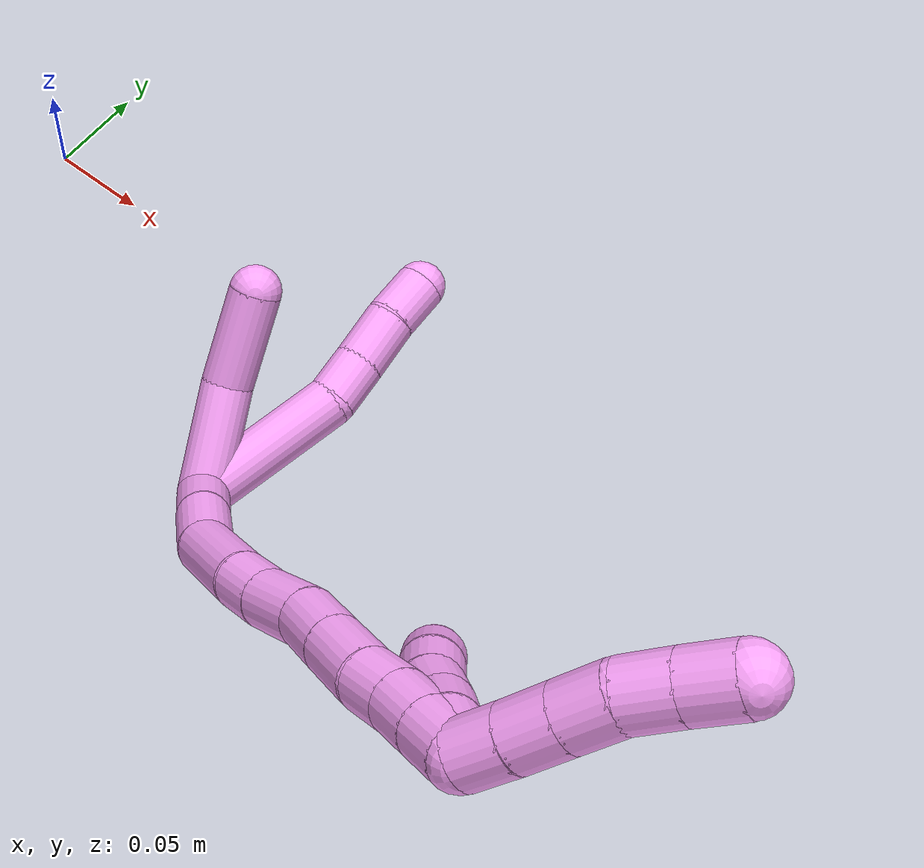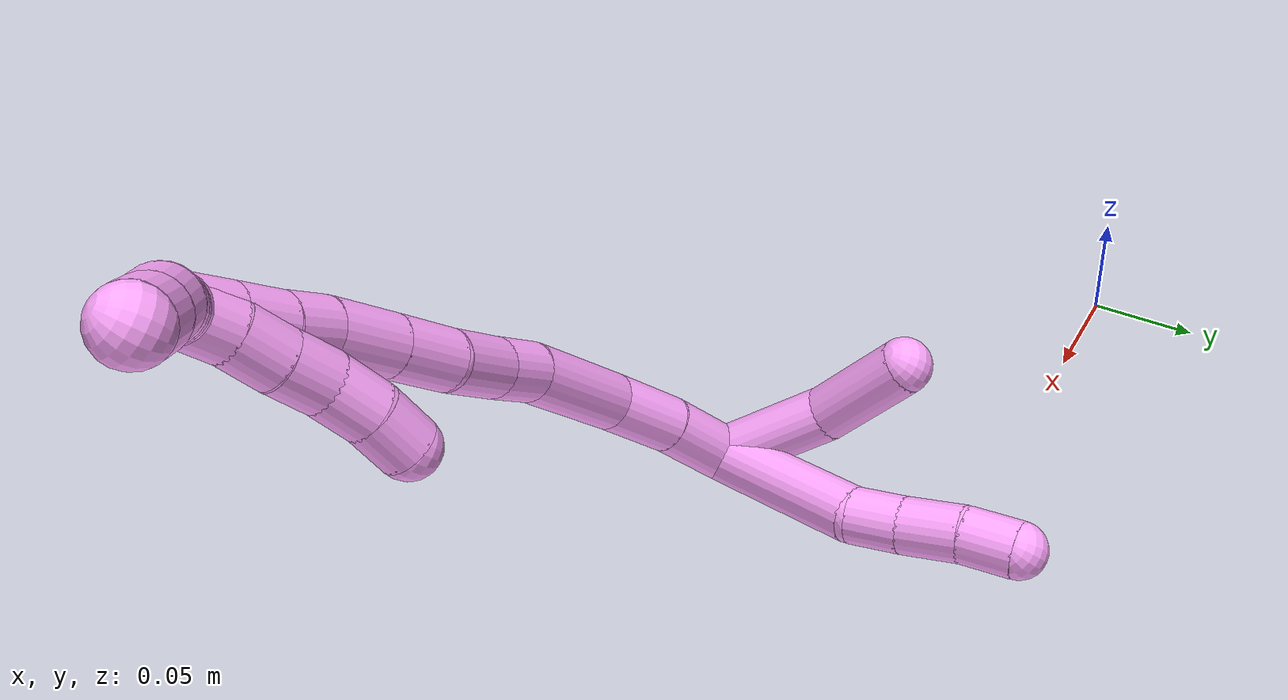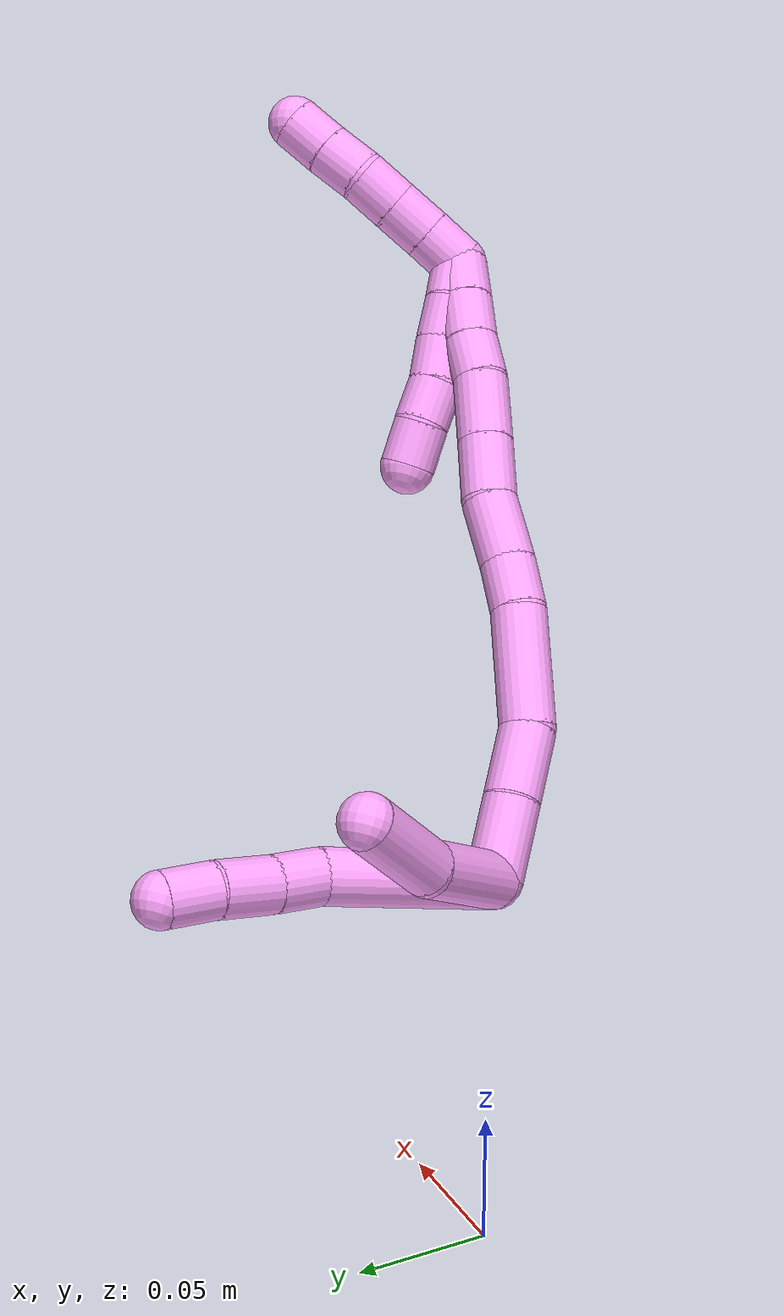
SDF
<sdf version="1.7">
 <world name="default">
  <model name="4">
   <static>0</static>
   <link name="4">
    <collision name="collision-cylinder-e_1_2_8">
     <pose>0.001059 0.0363 -0.010441 -1.85087 0.028027 -0.037223</pose>
     <geometry><cylinder><radius>0.0125</radius><length>0.075574</length></cylinder></geometry>
     <surface>
      <friction><ode><mu>1.16</mu><mu2>1.16</mu2><slip1>0</slip1><slip2>0</slip2></ode></friction>
      <contact><ode><kp>1e+06</kp><kd>1</kd><max_vel>0</max_vel><min_depth>0.001</min_depth></ode></contact>
     </surface>
    </collision>
    <visual name="visual-cylinder-e_1_2_8">
     <pose>0.001059 0.0363 -0.010441 -1.85087 0.028027 -0.037223</pose>
     <geometry><cylinder><radius>0.0125</radius><length>0.075574</length></cylinder></geometry>
     <material><ambient>1 0.65098 0.996078 1</ambient></material>
    </visual>
    <collision name="collision-cylinder-e_2_8_9">
     <pose>-0.000346 0.082585 -0.026253 -2.06431 -0.214006 0.355692</pose>
     <geometry><cylinder><radius>0.0125</radius><length>0.023203</length></cylinder></geometry>
     <surface>
      <friction><ode><mu>1.16</mu><mu2>1.16</mu2><slip1>0</slip1><slip2>0</slip2></ode></friction>
      <contact><ode><kp>1e+06</kp><kd>1</kd><max_vel>0</max_vel><min_depth>0.001</min_depth></ode></contact>
     </surface>
    </collision>
    <visual name="visual-cylinder-e_2_8_9">
     <pose>-0.000346 0.082585 -0.026253 -2.06431 -0.214006 0.355692</pose>
     <geometry><cylinder><radius>0.0125</radius><length>0.023203</length></cylinder></geometry>
     <material><ambient>1 0.65098 0.996078 1</ambient></material>
    </visual>
    <collision name="collision-cylinder-e_3_9_10">
     <pose>-0.00619 0.104503 -0.037143 -2.00401 -0.251599 0.390621</pose>
     <geometry><cylinder><radius>0.0125</radius><length>0.027152</length></cylinder></geometry>
     <surface>
      <friction><ode><mu>1.16</mu><mu2>1.16</mu2><slip1>0</slip1><slip2>0</slip2></ode></friction>
      <contact><ode><kp>1e+06</kp><kd>1</kd><max_vel>0</max_vel><min_depth>0.001</min_depth></ode></contact>
     </surface>
    </collision>
    <visual name="visual-cylinder-e_3_9_10">
     <pose>-0.00619 0.104503 -0.037143 -2.00401 -0.251599 0.390621</pose>
     <geometry><cylinder><radius>0.0125</radius><length>0.027152</length></cylinder></geometry>
     <material><ambient>1 0.65098 0.996078 1</ambient></material>
    </visual>
    <collision name="collision-cylinder-e_4_10_6">
     <pose>-0.011153 0.12691 -0.048377 -2.07023 -0.131935 0.221682</pose>
     <geometry><cylinder><radius>0.0125</radius><length>0.024071</length></cylinder></geometry>
     <surface>
      <friction><ode><mu>1.16</mu><mu2>1.16</mu2><slip1>0</slip1><slip2>0</slip2></ode></friction>
      <contact><ode><kp>1e+06</kp><kd>1</kd><max_vel>0</max_vel><min_depth>0.001</min_depth></ode></contact>
     </surface>
    </collision>
    <visual name="visual-cylinder-e_4_10_6">
     <pose>-0.011153 0.12691 -0.048377 -2.07023 -0.131935 0.221682</pose>
     <geometry><cylinder><radius>0.0125</radius><length>0.024071</length></cylinder></geometry>
     <material><ambient>1 0.65098 0.996078 1</ambient></material>
    </visual>
    <collision name="collision-cylinder-e_1_2_11">
     <pose>-0.01737 0.018982 -0.006185 -1.88578 -0.716014 0.951768</pose>
     <geometry><cylinder><radius>0.0125</radius><length>0.052927</length></cylinder></geometry>
     <surface>
      <friction><ode><mu>1.16</mu><mu2>1.16</mu2><slip1>0</slip1><slip2>0</slip2></ode></friction>
      <contact><ode><kp>1e+06</kp><kd>1</kd><max_vel>0</max_vel><min_depth>0.001</min_depth></ode></contact>
     </surface>
    </collision>
    <visual name="visual-cylinder-e_1_2_11">
     <pose>-0.01737 0.018982 -0.006185 -1.88578 -0.716014 0.951768</pose>
     <geometry><cylinder><radius>0.0125</radius><length>0.052927</length></cylinder></geometry>
     <material><ambient>1 0.65098 0.996078 1</ambient></material>
    </visual>
    <collision name="collision-cylinder-e_2_11_5">
     <pose>-0.049589 0.056172 -0.01096 -1.4935 -0.682664 0.635305</pose>
     <geometry><cylinder><radius>0.0125</radius><length>0.047073</length></cylinder></geometry>
     <surface>
      <friction><ode><mu>1.16</mu><mu2>1.16</mu2><slip1>0</slip1><slip2>0</slip2></ode></friction>
      <contact><ode><kp>1e+06</kp><kd>1</kd><max_vel>0</max_vel><min_depth>0.001</min_depth></ode></contact>
     </surface>
    </collision>
    <visual name="visual-cylinder-e_2_11_5">
     <pose>-0.049589 0.056172 -0.01096 -1.4935 -0.682664 0.635305</pose>
     <geometry><cylinder><radius>0.0125</radius><length>0.047073</length></cylinder></geometry>
     <material><ambient>1 0.65098 0.996078 1</ambient></material>
    </visual>
    <collision name="collision-cylinder-e_1_2_12">
     <pose>-4.6e-05 0.000497 0.017892 -0.02776 -0.002585 3.6e-05</pose>
     <geometry><cylinder><radius>0.0125</radius><length>0.035798</length></cylinder></geometry>
     <surface>
      <friction><ode><mu>1.16</mu><mu2>1.16</mu2><slip1>0</slip1><slip2>0</slip2></ode></friction>
      <contact><ode><kp>1e+06</kp><kd>1</kd><max_vel>0</max_vel><min_depth>0.001</min_depth></ode></contact>
     </surface>
    </collision>
    <visual name="visual-cylinder-e_1_2_12">
     <pose>-4.6e-05 0.000497 0.017892 -0.02776 -0.002585 3.6e-05</pose>
     <geometry><cylinder><radius>0.0125</radius><length>0.035798</length></cylinder></geometry>
     <material><ambient>1 0.65098 0.996078 1</ambient></material>
    </visual>
    <collision name="collision-cylinder-e_2_12_13">
     <pose>0.001356 0.001051 0.052293 -0.003452 0.087549 -0.000151</pose>
     <geometry><cylinder><radius>0.0125</radius><length>0.033144</length></cylinder></geometry>
     <surface>
      <friction><ode><mu>1.16</mu><mu2>1.16</mu2><slip1>0</slip1><slip2>0</slip2></ode></friction>
      <contact><ode><kp>1e+06</kp><kd>1</kd><max_vel>0</max_vel><min_depth>0.001</min_depth></ode></contact>
     </surface>
    </collision>
    <visual name="visual-cylinder-e_2_12_13">
     <pose>0.001356 0.001051 0.052293 -0.003452 0.087549 -0.000151</pose>
     <geometry><cylinder><radius>0.0125</radius><length>0.033144</length></cylinder></geometry>
     <material><ambient>1 0.65098 0.996078 1</ambient></material>
    </visual>
    <collision name="collision-cylinder-e_3_13_14">
     <pose>0.005584 0.008836 0.094533 -0.291757 0.103055 -0.015154</pose>
     <geometry><cylinder><radius>0.0125</radius><length>0.054021</length></cylinder></geometry>
     <surface>
      <friction><ode><mu>1.16</mu><mu2>1.16</mu2><slip1>0</slip1><slip2>0</slip2></ode></friction>
      <contact><ode><kp>1e+06</kp><kd>1</kd><max_vel>0</max_vel><min_depth>0.001</min_depth></ode></contact>
     </surface>
    </collision>
    <visual name="visual-cylinder-e_3_13_14">
     <pose>0.005584 0.008836 0.094533 -0.291757 0.103055 -0.015154</pose>
     <geometry><cylinder><radius>0.0125</radius><length>0.054021</length></cylinder></geometry>
     <material><ambient>1 0.65098 0.996078 1</ambient></material>
    </visual>
    <collision name="collision-cylinder-e_4_14_15">
     <pose>0.011165 0.020839 0.130761 -0.386792 0.242413 -0.0477</pose>
     <geometry><cylinder><radius>0.0125</radius><length>0.023351</length></cylinder></geometry>
     <surface>
      <friction><ode><mu>1.16</mu><mu2>1.16</mu2><slip1>0</slip1><slip2>0</slip2></ode></friction>
      <contact><ode><kp>1e+06</kp><kd>1</kd><max_vel>0</max_vel><min_depth>0.001</min_depth></ode></contact>
     </surface>
    </collision>
    <visual name="visual-cylinder-e_4_14_15">
     <pose>0.011165 0.020839 0.130761 -0.386792 0.242413 -0.0477</pose>
     <geometry><cylinder><radius>0.0125</radius><length>0.023351</length></cylinder></geometry>
     <material><ambient>1 0.65098 0.996078 1</ambient></material>
    </visual>
    <collision name="collision-cylinder-e_5_15_16">
     <pose>0.016945 0.032006 0.154788 -0.471123 0.19358 -0.0466</pose>
     <geometry><cylinder><radius>0.0125</radius><length>0.030946</length></cylinder></geometry>
     <surface>
      <friction><ode><mu>1.16</mu><mu2>1.16</mu2><slip1>0</slip1><slip2>0</slip2></ode></friction>
      <contact><ode><kp>1e+06</kp><kd>1</kd><max_vel>0</max_vel><min_depth>0.001</min_depth></ode></contact>
     </surface>
    </collision>
    <visual name="visual-cylinder-e_5_15_16">
     <pose>0.016945 0.032006 0.154788 -0.471123 0.19358 -0.0466</pose>
     <geometry><cylinder><radius>0.0125</radius><length>0.030946</length></cylinder></geometry>
     <material><ambient>1 0.65098 0.996078 1</ambient></material>
    </visual>
    <collision name="collision-cylinder-e_6_16_17">
     <pose>0.022395 0.042559 0.181974 -0.261914 0.173215 -0.02287</pose>
     <geometry><cylinder><radius>0.0125</radius><length>0.028706</length></cylinder></geometry>
     <surface>
      <friction><ode><mu>1.16</mu><mu2>1.16</mu2><slip1>0</slip1><slip2>0</slip2></ode></friction>
      <contact><ode><kp>1e+06</kp><kd>1</kd><max_vel>0</max_vel><min_depth>0.001</min_depth></ode></contact>
     </surface>
    </collision>
    <visual name="visual-cylinder-e_6_16_17">
     <pose>0.022395 0.042559 0.181974 -0.261914 0.173215 -0.02287</pose>
     <geometry><cylinder><radius>0.0125</radius><length>0.028706</length></cylinder></geometry>
     <material><ambient>1 0.65098 0.996078 1</ambient></material>
    </visual>
    <collision name="collision-cylinder-e_7_17_18">
     <pose>0.027642 0.050346 0.210468 -0.271222 0.178175 -0.024375</pose>
     <geometry><cylinder><radius>0.0125</radius><length>0.031299</length></cylinder></geometry>
     <surface>
      <friction><ode><mu>1.16</mu><mu2>1.16</mu2><slip1>0</slip1><slip2>0</slip2></ode></friction>
      <contact><ode><kp>1e+06</kp><kd>1</kd><max_vel>0</max_vel><min_depth>0.001</min_depth></ode></contact>
     </surface>
    </collision>
    <visual name="visual-cylinder-e_7_17_18">
     <pose>0.027642 0.050346 0.210468 -0.271222 0.178175 -0.024375</pose>
     <geometry><cylinder><radius>0.0125</radius><length>0.031299</length></cylinder></geometry>
     <material><ambient>1 0.65098 0.996078 1</ambient></material>
    </visual>
    <collision name="collision-cylinder-e_8_18_19">
     <pose>0.033142 0.058404 0.234555 -0.402019 0.264906 -0.054282</pose>
     <geometry><cylinder><radius>0.0125</radius><length>0.020827</length></cylinder></geometry>
     <surface>
      <friction><ode><mu>1.16</mu><mu2>1.16</mu2><slip1>0</slip1><slip2>0</slip2></ode></friction>
      <contact><ode><kp>1e+06</kp><kd>1</kd><max_vel>0</max_vel><min_depth>0.001</min_depth></ode></contact>
     </surface>
    </collision>
    <visual name="visual-cylinder-e_8_18_19">
     <pose>0.033142 0.058404 0.234555 -0.402019 0.264906 -0.054282</pose>
     <geometry><cylinder><radius>0.0125</radius><length>0.020827</length></cylinder></geometry>
     <material><ambient>1 0.65098 0.996078 1</ambient></material>
    </visual>
    <collision name="collision-cylinder-e_9_19_20">
     <pose>0.038259 0.065513 0.253826 -0.306916 0.223615 -0.034729</pose>
     <geometry><cylinder><radius>0.0125</radius><length>0.021562</length></cylinder></geometry>
     <surface>
      <friction><ode><mu>1.16</mu><mu2>1.16</mu2><slip1>0</slip1><slip2>0</slip2></ode></friction>
      <contact><ode><kp>1e+06</kp><kd>1</kd><max_vel>0</max_vel><min_depth>0.001</min_depth></ode></contact>
     </surface>
    </collision>
    <visual name="visual-cylinder-e_9_19_20">
     <pose>0.038259 0.065513 0.253826 -0.306916 0.223615 -0.034729</pose>
     <geometry><cylinder><radius>0.0125</radius><length>0.021562</length></cylinder></geometry>
     <material><ambient>1 0.65098 0.996078 1</ambient></material>
    </visual>
    <collision name="collision-cylinder-e_10_20_1">
     <pose>0.042968 0.071741 0.273271 -0.313187 0.229814 -0.036441</pose>
     <geometry><cylinder><radius>0.0125</radius><length>0.020347</length></cylinder></geometry>
     <surface>
      <friction><ode><mu>1.16</mu><mu2>1.16</mu2><slip1>0</slip1><slip2>0</slip2></ode></friction>
      <contact><ode><kp>1e+06</kp><kd>1</kd><max_vel>0</max_vel><min_depth>0.001</min_depth></ode></contact>
     </surface>
    </collision>
    <visual name="visual-cylinder-e_10_20_1">
     <pose>0.042968 0.071741 0.273271 -0.313187 0.229814 -0.036441</pose>
     <geometry><cylinder><radius>0.0125</radius><length>0.020347</length></cylinder></geometry>
     <material><ambient>1 0.65098 0.996078 1</ambient></material>
    </visual>
    <collision name="collision-cylinder-e_1_1_21">
     <pose>0.045406 0.083865 0.2869 -1.1368 0.012046 -0.007694</pose>
     <geometry><cylinder><radius>0.0125</radius><length>0.02</length></cylinder></geometry>
     <surface>
      <friction><ode><mu>1.16</mu><mu2>1.16</mu2><slip1>0</slip1><slip2>0</slip2></ode></friction>
      <contact><ode><kp>1e+06</kp><kd>1</kd><max_vel>0</max_vel><min_depth>0.001</min_depth></ode></contact>
     </surface>
    </collision>
    <visual name="visual-cylinder-e_1_1_21">
     <pose>0.045406 0.083865 0.2869 -1.1368 0.012046 -0.007694</pose>
     <geometry><cylinder><radius>0.0125</radius><length>0.02</length></cylinder></geometry>
     <material><ambient>1 0.65098 0.996078 1</ambient></material>
    </visual>
    <collision name="collision-cylinder-e_2_21_22">
     <pose>0.045466 0.102137 0.295025 -1.16798 -0.005966 0.003943</pose>
     <geometry><cylinder><radius>0.0125</radius><length>0.02</length></cylinder></geometry>
     <surface>
      <friction><ode><mu>1.16</mu><mu2>1.16</mu2><slip1>0</slip1><slip2>0</slip2></ode></friction>
      <contact><ode><kp>1e+06</kp><kd>1</kd><max_vel>0</max_vel><min_depth>0.001</min_depth></ode></contact>
     </surface>
    </collision>
    <visual name="visual-cylinder-e_2_21_22">
     <pose>0.045466 0.102137 0.295025 -1.16798 -0.005966 0.003943</pose>
     <geometry><cylinder><radius>0.0125</radius><length>0.02</length></cylinder></geometry>
     <material><ambient>1 0.65098 0.996078 1</ambient></material>
    </visual>
    <collision name="collision-cylinder-e_3_22_23">
     <pose>0.045346 0.120508 0.30293 -1.16087 -0.00608 0.003987</pose>
     <geometry><cylinder><radius>0.0125</radius><length>0.02</length></cylinder></geometry>
     <surface>
      <friction><ode><mu>1.16</mu><mu2>1.16</mu2><slip1>0</slip1><slip2>0</slip2></ode></friction>
      <contact><ode><kp>1e+06</kp><kd>1</kd><max_vel>0</max_vel><min_depth>0.001</min_depth></ode></contact>
     </surface>
    </collision>
    <visual name="visual-cylinder-e_3_22_23">
     <pose>0.045346 0.120508 0.30293 -1.16087 -0.00608 0.003987</pose>
     <geometry><cylinder><radius>0.0125</radius><length>0.02</length></cylinder></geometry>
     <material><ambient>1 0.65098 0.996078 1</ambient></material>
    </visual>
    <collision name="collision-cylinder-e_4_23_24">
     <pose>0.04734 0.138542 0.311065 -1.13291 0.206955 -0.1319</pose>
     <geometry><cylinder><radius>0.0125</radius><length>0.02</length></cylinder></geometry>
     <surface>
      <friction><ode><mu>1.16</mu><mu2>1.16</mu2><slip1>0</slip1><slip2>0</slip2></ode></friction>
      <contact><ode><kp>1e+06</kp><kd>1</kd><max_vel>0</max_vel><min_depth>0.001</min_depth></ode></contact>
     </surface>
    </collision>
    <visual name="visual-cylinder-e_4_23_24">
     <pose>0.04734 0.138542 0.311065 -1.13291 0.206955 -0.1319</pose>
     <geometry><cylinder><radius>0.0125</radius><length>0.02</length></cylinder></geometry>
     <material><ambient>1 0.65098 0.996078 1</ambient></material>
    </visual>
    <collision name="collision-cylinder-e_5_24_4">
     <pose>0.051453 0.156072 0.319761 -1.08771 0.207284 -0.125627</pose>
     <geometry><cylinder><radius>0.0125</radius><length>0.02</length></cylinder></geometry>
     <surface>
      <friction><ode><mu>1.16</mu><mu2>1.16</mu2><slip1>0</slip1><slip2>0</slip2></ode></friction>
      <contact><ode><kp>1e+06</kp><kd>1</kd><max_vel>0</max_vel><min_depth>0.001</min_depth></ode></contact>
     </surface>
    </collision>
    <visual name="visual-cylinder-e_5_24_4">
     <pose>0.051453 0.156072 0.319761 -1.08771 0.207284 -0.125627</pose>
     <geometry><cylinder><radius>0.0125</radius><length>0.02</length></cylinder></geometry>
     <material><ambient>1 0.65098 0.996078 1</ambient></material>
    </visual>
    <collision name="collision-cylinder-e_1_1_25">
     <pose>0.044823 0.074186 0.272724 3.08084 -0.046208 -1.30037</pose>
     <geometry><cylinder><radius>0.0125</radius><length>0.02</length></cylinder></geometry>
     <surface>
      <friction><ode><mu>1.16</mu><mu2>1.16</mu2><slip1>0</slip1><slip2>0</slip2></ode></friction>
      <contact><ode><kp>1e+06</kp><kd>1</kd><max_vel>0</max_vel><min_depth>0.001</min_depth></ode></contact>
     </surface>
    </collision>
    <visual name="visual-cylinder-e_1_1_25">
     <pose>0.044823 0.074186 0.272724 3.08084 -0.046208 -1.30037</pose>
     <geometry><cylinder><radius>0.0125</radius><length>0.02</length></cylinder></geometry>
     <material><ambient>1 0.65098 0.996078 1</ambient></material>
    </visual>
    <collision name="collision-cylinder-e_2_25_26">
     <pose>0.045258 0.072996 0.252811 3.08292 0.089757 1.98405</pose>
     <geometry><cylinder><radius>0.0125</radius><length>0.02</length></cylinder></geometry>
     <surface>
      <friction><ode><mu>1.16</mu><mu2>1.16</mu2><slip1>0</slip1><slip2>0</slip2></ode></friction>
      <contact><ode><kp>1e+06</kp><kd>1</kd><max_vel>0</max_vel><min_depth>0.001</min_depth></ode></contact>
     </surface>
    </collision>
    <visual name="visual-cylinder-e_2_25_26">
     <pose>0.045258 0.072996 0.252811 3.08292 0.089757 1.98405</pose>
     <geometry><cylinder><radius>0.0125</radius><length>0.02</length></cylinder></geometry>
     <material><ambient>1 0.65098 0.996078 1</ambient></material>
    </visual>
    <collision name="collision-cylinder-e_3_26_27">
     <pose>0.046374 0.071454 0.232917 3.04562 0.022002 0.45041</pose>
     <geometry><cylinder><radius>0.0125</radius><length>0.02</length></cylinder></geometry>
     <surface>
      <friction><ode><mu>1.16</mu><mu2>1.16</mu2><slip1>0</slip1><slip2>0</slip2></ode></friction>
      <contact><ode><kp>1e+06</kp><kd>1</kd><max_vel>0</max_vel><min_depth>0.001</min_depth></ode></contact>
     </surface>
    </collision>
    <visual name="visual-cylinder-e_3_26_27">
     <pose>0.046374 0.071454 0.232917 3.04562 0.022002 0.45041</pose>
     <geometry><cylinder><radius>0.0125</radius><length>0.02</length></cylinder></geometry>
     <material><ambient>1 0.65098 0.996078 1</ambient></material>
    </visual>
    <collision name="collision-cylinder-e_4_27_28">
     <pose>0.047863 0.071049 0.213061 -3.08579 0.127247 -2.31585</pose>
     <geometry><cylinder><radius>0.0125</radius><length>0.02</length></cylinder></geometry>
     <surface>
      <friction><ode><mu>1.16</mu><mu2>1.16</mu2><slip1>0</slip1><slip2>0</slip2></ode></friction>
      <contact><ode><kp>1e+06</kp><kd>1</kd><max_vel>0</max_vel><min_depth>0.001</min_depth></ode></contact>
     </surface>
    </collision>
    <visual name="visual-cylinder-e_4_27_28">
     <pose>0.047863 0.071049 0.213061 -3.08579 0.127247 -2.31585</pose>
     <geometry><cylinder><radius>0.0125</radius><length>0.02</length></cylinder></geometry>
     <material><ambient>1 0.65098 0.996078 1</ambient></material>
    </visual>
    <collision name="collision-cylinder-e_5_28_3">
     <pose>0.051797 0.071512 0.19352 3.13229 0.269774 3.07305</pose>
     <geometry><cylinder><radius>0.0125</radius><length>0.02</length></cylinder></geometry>
     <surface>
      <friction><ode><mu>1.16</mu><mu2>1.16</mu2><slip1>0</slip1><slip2>0</slip2></ode></friction>
      <contact><ode><kp>1e+06</kp><kd>1</kd><max_vel>0</max_vel><min_depth>0.001</min_depth></ode></contact>
     </surface>
    </collision>
    <visual name="visual-cylinder-e_5_28_3">
     <pose>0.051797 0.071512 0.19352 3.13229 0.269774 3.07305</pose>
     <geometry><cylinder><radius>0.0125</radius><length>0.02</length></cylinder></geometry>
     <material><ambient>1 0.65098 0.996078 1</ambient></material>
    </visual>
    <collision name="collision-sphere-3">
     <pose>0.054462 0.071423 0.183882 0 -0 0</pose>
     <geometry><sphere><radius>0.0125</radius></sphere></geometry>
     <surface>
      <friction><ode><mu>1.16</mu><mu2>1.16</mu2><slip1>0</slip1><slip2>0</slip2></ode></friction>
      <contact><ode><kp>1e+06</kp><kd>1</kd><max_vel>0</max_vel><min_depth>0.001</min_depth></ode></contact>
     </surface>
    </collision>
    <visual name="visual-sphere-3">
     <pose>0.054462 0.071423 0.183882 0 -0 0</pose>
     <geometry><sphere><radius>0.0125</radius></sphere></geometry>
     <material><ambient>1 0.65098 0.996078 1</ambient></material>
    </visual>
    <collision name="collision-sphere-28">
     <pose>0.049132 0.071602 0.203158 0 -0 0</pose>
     <geometry><sphere><radius>0.0125</radius></sphere></geometry>
     <surface>
      <friction><ode><mu>1.16</mu><mu2>1.16</mu2><slip1>0</slip1><slip2>0</slip2></ode></friction>
      <contact><ode><kp>1e+06</kp><kd>1</kd><max_vel>0</max_vel><min_depth>0.001</min_depth></ode></contact>
     </surface>
    </collision>
    <visual name="visual-sphere-28">
     <pose>0.049132 0.071602 0.203158 0 -0 0</pose>
     <geometry><sphere><radius>0.0125</radius></sphere></geometry>
     <material><ambient>1 0.65098 0.996078 1</ambient></material>
    </visual>
    <collision name="collision-sphere-27">
     <pose>0.046594 0.070496 0.222965 0 -0 0</pose>
     <geometry><sphere><radius>0.0125</radius></sphere></geometry>
     <surface>
      <friction><ode><mu>1.16</mu><mu2>1.16</mu2><slip1>0</slip1><slip2>0</slip2></ode></friction>
      <contact><ode><kp>1e+06</kp><kd>1</kd><max_vel>0</max_vel><min_depth>0.001</min_depth></ode></contact>
     </surface>
    </collision>
    <visual name="visual-sphere-27">
     <pose>0.046594 0.070496 0.222965 0 -0 0</pose>
     <geometry><sphere><radius>0.0125</radius></sphere></geometry>
     <material><ambient>1 0.65098 0.996078 1</ambient></material>
    </visual>
    <collision name="collision-sphere-26">
     <pose>0.046154 0.072412 0.242868 0 -0 0</pose>
     <geometry><sphere><radius>0.0125</radius></sphere></geometry>
     <surface>
      <friction><ode><mu>1.16</mu><mu2>1.16</mu2><slip1>0</slip1><slip2>0</slip2></ode></friction>
      <contact><ode><kp>1e+06</kp><kd>1</kd><max_vel>0</max_vel><min_depth>0.001</min_depth></ode></contact>
     </surface>
    </collision>
    <visual name="visual-sphere-26">
     <pose>0.046154 0.072412 0.242868 0 -0 0</pose>
     <geometry><sphere><radius>0.0125</radius></sphere></geometry>
     <material><ambient>1 0.65098 0.996078 1</ambient></material>
    </visual>
    <collision name="collision-sphere-25">
     <pose>0.044361 0.07358 0.262754 0 -0 0</pose>
     <geometry><sphere><radius>0.0125</radius></sphere></geometry>
     <surface>
      <friction><ode><mu>1.16</mu><mu2>1.16</mu2><slip1>0</slip1><slip2>0</slip2></ode></friction>
      <contact><ode><kp>1e+06</kp><kd>1</kd><max_vel>0</max_vel><min_depth>0.001</min_depth></ode></contact>
     </surface>
    </collision>
    <visual name="visual-sphere-25">
     <pose>0.044361 0.07358 0.262754 0 -0 0</pose>
     <geometry><sphere><radius>0.0125</radius></sphere></geometry>
     <material><ambient>1 0.65098 0.996078 1</ambient></material>
    </visual>
    <collision name="collision-sphere-4">
     <pose>0.053511 0.164738 0.324306 0 -0 0</pose>
     <geometry><sphere><radius>0.0125</radius></sphere></geometry>
     <surface>
      <friction><ode><mu>1.16</mu><mu2>1.16</mu2><slip1>0</slip1><slip2>0</slip2></ode></friction>
      <contact><ode><kp>1e+06</kp><kd>1</kd><max_vel>0</max_vel><min_depth>0.001</min_depth></ode></contact>
     </surface>
    </collision>
    <visual name="visual-sphere-4">
     <pose>0.053511 0.164738 0.324306 0 -0 0</pose>
     <geometry><sphere><radius>0.0125</radius></sphere></geometry>
     <material><ambient>1 0.65098 0.996078 1</ambient></material>
    </visual>
    <collision name="collision-sphere-24">
     <pose>0.049395 0.147405 0.315215 0 -0 0</pose>
     <geometry><sphere><radius>0.0125</radius></sphere></geometry>
     <surface>
      <friction><ode><mu>1.16</mu><mu2>1.16</mu2><slip1>0</slip1><slip2>0</slip2></ode></friction>
      <contact><ode><kp>1e+06</kp><kd>1</kd><max_vel>0</max_vel><min_depth>0.001</min_depth></ode></contact>
     </surface>
    </collision>
    <visual name="visual-sphere-24">
     <pose>0.049395 0.147405 0.315215 0 -0 0</pose>
     <geometry><sphere><radius>0.0125</radius></sphere></geometry>
     <material><ambient>1 0.65098 0.996078 1</ambient></material>
    </visual>
    <collision name="collision-sphere-23">
     <pose>0.045285 0.129679 0.306915 0 -0 0</pose>
     <geometry><sphere><radius>0.0125</radius></sphere></geometry>
     <surface>
      <friction><ode><mu>1.16</mu><mu2>1.16</mu2><slip1>0</slip1><slip2>0</slip2></ode></friction>
      <contact><ode><kp>1e+06</kp><kd>1</kd><max_vel>0</max_vel><min_depth>0.001</min_depth></ode></contact>
     </surface>
    </collision>
    <visual name="visual-sphere-23">
     <pose>0.045285 0.129679 0.306915 0 -0 0</pose>
     <geometry><sphere><radius>0.0125</radius></sphere></geometry>
     <material><ambient>1 0.65098 0.996078 1</ambient></material>
    </visual>
    <collision name="collision-sphere-22">
     <pose>0.045407 0.111336 0.298945 0 -0 0</pose>
     <geometry><sphere><radius>0.0125</radius></sphere></geometry>
     <surface>
      <friction><ode><mu>1.16</mu><mu2>1.16</mu2><slip1>0</slip1><slip2>0</slip2></ode></friction>
      <contact><ode><kp>1e+06</kp><kd>1</kd><max_vel>0</max_vel><min_depth>0.001</min_depth></ode></contact>
     </surface>
    </collision>
    <visual name="visual-sphere-22">
     <pose>0.045407 0.111336 0.298945 0 -0 0</pose>
     <geometry><sphere><radius>0.0125</radius></sphere></geometry>
     <material><ambient>1 0.65098 0.996078 1</ambient></material>
    </visual>
    <collision name="collision-sphere-21">
     <pose>0.045526 0.092937 0.291105 0 -0 0</pose>
     <geometry><sphere><radius>0.0125</radius></sphere></geometry>
     <surface>
      <friction><ode><mu>1.16</mu><mu2>1.16</mu2><slip1>0</slip1><slip2>0</slip2></ode></friction>
      <contact><ode><kp>1e+06</kp><kd>1</kd><max_vel>0</max_vel><min_depth>0.001</min_depth></ode></contact>
     </surface>
    </collision>
    <visual name="visual-sphere-21">
     <pose>0.045526 0.092937 0.291105 0 -0 0</pose>
     <geometry><sphere><radius>0.0125</radius></sphere></geometry>
     <material><ambient>1 0.65098 0.996078 1</ambient></material>
    </visual>
    <collision name="collision-sphere-1">
     <pose>0.045285 0.074793 0.282695 0 -0 0</pose>
     <geometry><sphere><radius>0.0125</radius></sphere></geometry>
     <surface>
      <friction><ode><mu>1.16</mu><mu2>1.16</mu2><slip1>0</slip1><slip2>0</slip2></ode></friction>
      <contact><ode><kp>1e+06</kp><kd>1</kd><max_vel>0</max_vel><min_depth>0.001</min_depth></ode></contact>
     </surface>
    </collision>
    <visual name="visual-sphere-1">
     <pose>0.045285 0.074793 0.282695 0 -0 0</pose>
     <geometry><sphere><radius>0.0125</radius></sphere></geometry>
     <material><ambient>1 0.65098 0.996078 1</ambient></material>
    </visual>
    <collision name="collision-sphere-11">
     <pose>-0.03474 0.037965 -0.01237 0 -0 0</pose>
     <geometry><sphere><radius>0.0125</radius></sphere></geometry>
     <surface>
      <friction><ode><mu>1.16</mu><mu2>1.16</mu2><slip1>0</slip1><slip2>0</slip2></ode></friction>
      <contact><ode><kp>1e+06</kp><kd>1</kd><max_vel>0</max_vel><min_depth>0.001</min_depth></ode></contact>
     </surface>
    </collision>
    <visual name="visual-sphere-11">
     <pose>-0.03474 0.037965 -0.01237 0 -0 0</pose>
     <geometry><sphere><radius>0.0125</radius></sphere></geometry>
     <material><ambient>1 0.65098 0.996078 1</ambient></material>
    </visual>
    <collision name="collision-sphere-6">
     <pose>-0.012736 0.137384 -0.054091 0 -0 0</pose>
     <geometry><sphere><radius>0.0125</radius></sphere></geometry>
     <surface>
      <friction><ode><mu>1.16</mu><mu2>1.16</mu2><slip1>0</slip1><slip2>0</slip2></ode></friction>
      <contact><ode><kp>1e+06</kp><kd>1</kd><max_vel>0</max_vel><min_depth>0.001</min_depth></ode></contact>
     </surface>
    </collision>
    <visual name="visual-sphere-6">
     <pose>-0.012736 0.137384 -0.054091 0 -0 0</pose>
     <geometry><sphere><radius>0.0125</radius></sphere></geometry>
     <material><ambient>1 0.65098 0.996078 1</ambient></material>
    </visual>
    <collision name="collision-sphere-10">
     <pose>-0.009569 0.116437 -0.042663 0 -0 0</pose>
     <geometry><sphere><radius>0.0125</radius></sphere></geometry>
     <surface>
      <friction><ode><mu>1.16</mu><mu2>1.16</mu2><slip1>0</slip1><slip2>0</slip2></ode></friction>
      <contact><ode><kp>1e+06</kp><kd>1</kd><max_vel>0</max_vel><min_depth>0.001</min_depth></ode></contact>
     </surface>
    </collision>
    <visual name="visual-sphere-10">
     <pose>-0.009569 0.116437 -0.042663 0 -0 0</pose>
     <geometry><sphere><radius>0.0125</radius></sphere></geometry>
     <material><ambient>1 0.65098 0.996078 1</ambient></material>
    </visual>
    <collision name="collision-sphere-9">
     <pose>-0.00281 0.092569 -0.031623 0 -0 0</pose>
     <geometry><sphere><radius>0.0125</radius></sphere></geometry>
     <surface>
      <friction><ode><mu>1.16</mu><mu2>1.16</mu2><slip1>0</slip1><slip2>0</slip2></ode></friction>
      <contact><ode><kp>1e+06</kp><kd>1</kd><max_vel>0</max_vel><min_depth>0.001</min_depth></ode></contact>
     </surface>
    </collision>
    <visual name="visual-sphere-9">
     <pose>-0.00281 0.092569 -0.031623 0 -0 0</pose>
     <geometry><sphere><radius>0.0125</radius></sphere></geometry>
     <material><ambient>1 0.65098 0.996078 1</ambient></material>
    </visual>
    <collision name="collision-sphere-2">
     <geometry><sphere><radius>0.0125</radius></sphere></geometry>
     <surface>
      <friction><ode><mu>1.16</mu><mu2>1.16</mu2><slip1>0</slip1><slip2>0</slip2></ode></friction>
      <contact><ode><kp>1e+06</kp><kd>1</kd><max_vel>0</max_vel><min_depth>0.001</min_depth></ode></contact>
     </surface>
    </collision>
    <visual name="visual-sphere-2">
     <geometry><sphere><radius>0.0125</radius></sphere></geometry>
     <material><ambient>1 0.65098 0.996078 1</ambient></material>
    </visual>
    <collision name="collision-sphere-19">
     <pose>0.035869 0.062337 0.243804 0 -0 0</pose>
     <geometry><sphere><radius>0.0125</radius></sphere></geometry>
     <surface>
      <friction><ode><mu>1.16</mu><mu2>1.16</mu2><slip1>0</slip1><slip2>0</slip2></ode></friction>
      <contact><ode><kp>1e+06</kp><kd>1</kd><max_vel>0</max_vel><min_depth>0.001</min_depth></ode></contact>
     </surface>
    </collision>
    <visual name="visual-sphere-19">
     <pose>0.035869 0.062337 0.243804 0 -0 0</pose>
     <geometry><sphere><radius>0.0125</radius></sphere></geometry>
     <material><ambient>1 0.65098 0.996078 1</ambient></material>
    </visual>
    <collision name="collision-sphere-8">
     <pose>0.002118 0.072601 -0.020883 0 -0 0</pose>
     <geometry><sphere><radius>0.0125</radius></sphere></geometry>
     <surface>
      <friction><ode><mu>1.16</mu><mu2>1.16</mu2><slip1>0</slip1><slip2>0</slip2></ode></friction>
      <contact><ode><kp>1e+06</kp><kd>1</kd><max_vel>0</max_vel><min_depth>0.001</min_depth></ode></contact>
     </surface>
    </collision>
    <visual name="visual-sphere-8">
     <pose>0.002118 0.072601 -0.020883 0 -0 0</pose>
     <geometry><sphere><radius>0.0125</radius></sphere></geometry>
     <material><ambient>1 0.65098 0.996078 1</ambient></material>
    </visual>
    <collision name="collision-sphere-5">
     <pose>-0.064437 0.07438 -0.00955 0 -0 0</pose>
     <geometry><sphere><radius>0.0125</radius></sphere></geometry>
     <surface>
      <friction><ode><mu>1.16</mu><mu2>1.16</mu2><slip1>0</slip1><slip2>0</slip2></ode></friction>
      <contact><ode><kp>1e+06</kp><kd>1</kd><max_vel>0</max_vel><min_depth>0.001</min_depth></ode></contact>
     </surface>
    </collision>
    <visual name="visual-sphere-5">
     <pose>-0.064437 0.07438 -0.00955 0 -0 0</pose>
     <geometry><sphere><radius>0.0125</radius></sphere></geometry>
     <material><ambient>1 0.65098 0.996078 1</ambient></material>
    </visual>
    <collision name="collision-sphere-12">
     <pose>-9.3e-05 0.000994 0.035784 0 -0 0</pose>
     <geometry><sphere><radius>0.0125</radius></sphere></geometry>
     <surface>
      <friction><ode><mu>1.16</mu><mu2>1.16</mu2><slip1>0</slip1><slip2>0</slip2></ode></friction>
      <contact><ode><kp>1e+06</kp><kd>1</kd><max_vel>0</max_vel><min_depth>0.001</min_depth></ode></contact>
     </surface>
    </collision>
    <visual name="visual-sphere-12">
     <pose>-9.3e-05 0.000994 0.035784 0 -0 0</pose>
     <geometry><sphere><radius>0.0125</radius></sphere></geometry>
     <material><ambient>1 0.65098 0.996078 1</ambient></material>
    </visual>
    <collision name="collision-sphere-13">
     <pose>0.002805 0.001108 0.068801 0 -0 0</pose>
     <geometry><sphere><radius>0.0125</radius></sphere></geometry>
     <surface>
      <friction><ode><mu>1.16</mu><mu2>1.16</mu2><slip1>0</slip1><slip2>0</slip2></ode></friction>
      <contact><ode><kp>1e+06</kp><kd>1</kd><max_vel>0</max_vel><min_depth>0.001</min_depth></ode></contact>
     </surface>
    </collision>
    <visual name="visual-sphere-13">
     <pose>0.002805 0.001108 0.068801 0 -0 0</pose>
     <geometry><sphere><radius>0.0125</radius></sphere></geometry>
     <material><ambient>1 0.65098 0.996078 1</ambient></material>
    </visual>
    <collision name="collision-sphere-14">
     <pose>0.008363 0.016563 0.120264 0 -0 0</pose>
     <geometry><sphere><radius>0.0125</radius></sphere></geometry>
     <surface>
      <friction><ode><mu>1.16</mu><mu2>1.16</mu2><slip1>0</slip1><slip2>0</slip2></ode></friction>
      <contact><ode><kp>1e+06</kp><kd>1</kd><max_vel>0</max_vel><min_depth>0.001</min_depth></ode></contact>
     </surface>
    </collision>
    <visual name="visual-sphere-14">
     <pose>0.008363 0.016563 0.120264 0 -0 0</pose>
     <geometry><sphere><radius>0.0125</radius></sphere></geometry>
     <material><ambient>1 0.65098 0.996078 1</ambient></material>
    </visual>
    <collision name="collision-sphere-15">
     <pose>0.013968 0.025114 0.141258 0 -0 0</pose>
     <geometry><sphere><radius>0.0125</radius></sphere></geometry>
     <surface>
      <friction><ode><mu>1.16</mu><mu2>1.16</mu2><slip1>0</slip1><slip2>0</slip2></ode></friction>
      <contact><ode><kp>1e+06</kp><kd>1</kd><max_vel>0</max_vel><min_depth>0.001</min_depth></ode></contact>
     </surface>
    </collision>
    <visual name="visual-sphere-15">
     <pose>0.013968 0.025114 0.141258 0 -0 0</pose>
     <geometry><sphere><radius>0.0125</radius></sphere></geometry>
     <material><ambient>1 0.65098 0.996078 1</ambient></material>
    </visual>
    <collision name="collision-sphere-16">
     <pose>0.019921 0.038898 0.168318 0 -0 0</pose>
     <geometry><sphere><radius>0.0125</radius></sphere></geometry>
     <surface>
      <friction><ode><mu>1.16</mu><mu2>1.16</mu2><slip1>0</slip1><slip2>0</slip2></ode></friction>
      <contact><ode><kp>1e+06</kp><kd>1</kd><max_vel>0</max_vel><min_depth>0.001</min_depth></ode></contact>
     </surface>
    </collision>
    <visual name="visual-sphere-16">
     <pose>0.019921 0.038898 0.168318 0 -0 0</pose>
     <geometry><sphere><radius>0.0125</radius></sphere></geometry>
     <material><ambient>1 0.65098 0.996078 1</ambient></material>
    </visual>
    <collision name="collision-sphere-17">
     <pose>0.024869 0.04622 0.195629 0 -0 0</pose>
     <geometry><sphere><radius>0.0125</radius></sphere></geometry>
     <surface>
      <friction><ode><mu>1.16</mu><mu2>1.16</mu2><slip1>0</slip1><slip2>0</slip2></ode></friction>
      <contact><ode><kp>1e+06</kp><kd>1</kd><max_vel>0</max_vel><min_depth>0.001</min_depth></ode></contact>
     </surface>
    </collision>
    <visual name="visual-sphere-17">
     <pose>0.024869 0.04622 0.195629 0 -0 0</pose>
     <geometry><sphere><radius>0.0125</radius></sphere></geometry>
     <material><ambient>1 0.65098 0.996078 1</ambient></material>
    </visual>
    <collision name="collision-sphere-18">
     <pose>0.030416 0.054472 0.225306 0 -0 0</pose>
     <geometry><sphere><radius>0.0125</radius></sphere></geometry>
     <surface>
      <friction><ode><mu>1.16</mu><mu2>1.16</mu2><slip1>0</slip1><slip2>0</slip2></ode></friction>
      <contact><ode><kp>1e+06</kp><kd>1</kd><max_vel>0</max_vel><min_depth>0.001</min_depth></ode></contact>
     </surface>
    </collision>
    <visual name="visual-sphere-18">
     <pose>0.030416 0.054472 0.225306 0 -0 0</pose>
     <geometry><sphere><radius>0.0125</radius></sphere></geometry>
     <material><ambient>1 0.65098 0.996078 1</ambient></material>
    </visual>
    <collision name="collision-sphere-20">
     <pose>0.04065 0.068689 0.263847 0 -0 0</pose>
     <geometry><sphere><radius>0.0125</radius></sphere></geometry>
     <surface>
      <friction><ode><mu>1.16</mu><mu2>1.16</mu2><slip1>0</slip1><slip2>0</slip2></ode></friction>
      <contact><ode><kp>1e+06</kp><kd>1</kd><max_vel>0</max_vel><min_depth>0.001</min_depth></ode></contact>
     </surface>
    </collision>
    <visual name="visual-sphere-20">
     <pose>0.04065 0.068689 0.263847 0 -0 0</pose>
     <geometry><sphere><radius>0.0125</radius></sphere></geometry>
     <material><ambient>1 0.65098 0.996078 1</ambient></material>
    </visual>
    <inertial>
     <pose>0.014443 0.056454 0.123004 0 -0 0</pose>
     <mass>0.75</mass>
     <inertia>
      <ixx>0.000117</ixx>
      <ixy>0</ixy>
      <ixz>0</ixz>
      <iyy>8.3e-05</iyy>
      <iyz>0</iyz>
      <izz>-5.6e-05</izz>
     </inertia>
    </inertial>
   </link>
   <pose>0.197503 -0.111642 0.017474 0.481596 0.649814 -0.11111</pose>
  </model>
 </world>
</sdf>
